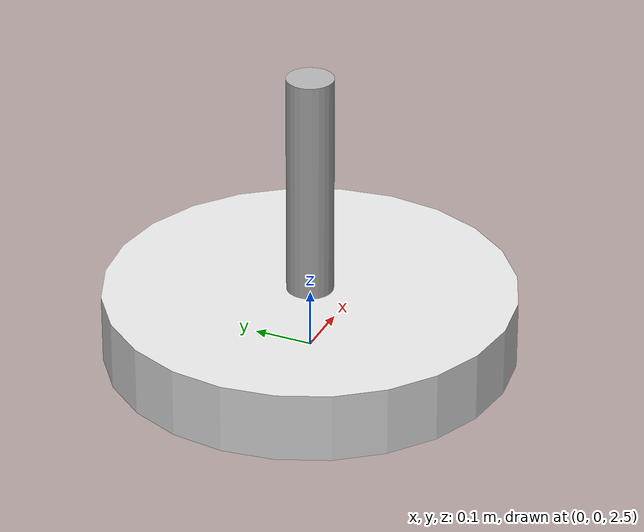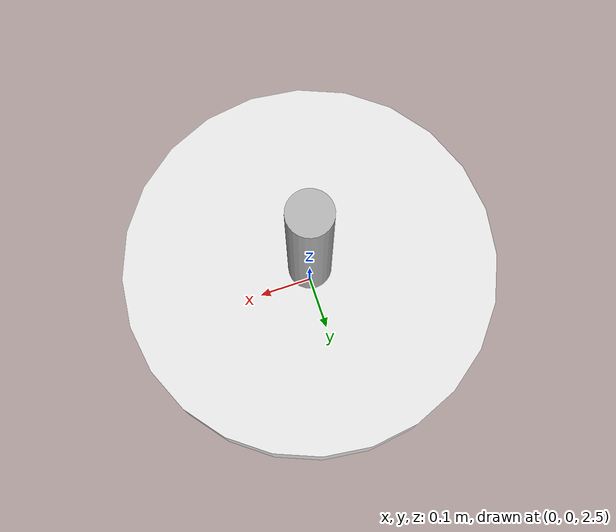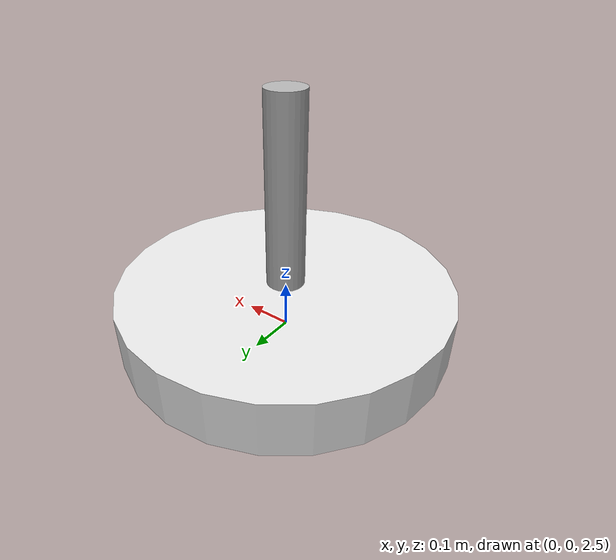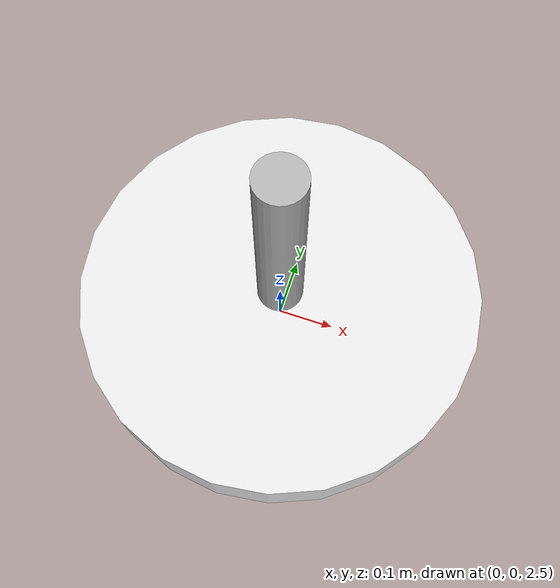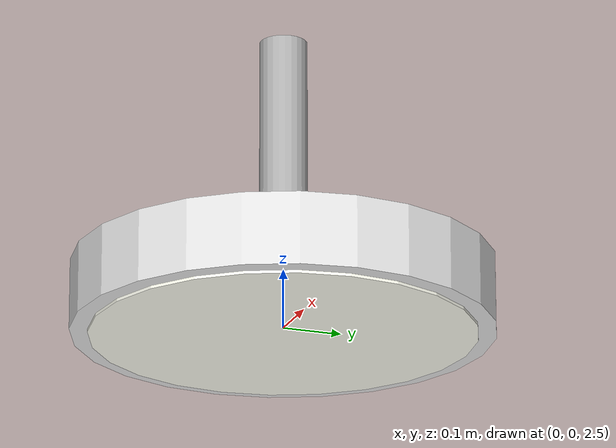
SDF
<?xml version="1.0"?>
<sdf version="1.6">
  <model name="surgical_light">
    <static>true</static>
    <!-- Ceiling mount arm -->
    <link name="arm">
      <pose>0 0 2.8 0 0 0</pose>
      <collision name="c"><geometry><cylinder><radius>0.04</radius><length>0.4</length></cylinder></geometry></collision>
      <visual name="v">
        <geometry><cylinder><radius>0.04</radius><length>0.4</length></cylinder></geometry>
        <material><ambient>0.7 0.7 0.7 1</ambient><diffuse>0.7 0.7 0.7 1</diffuse></material>
      </visual>
    </link>
    <!-- Main lamp head -->
    <link name="lamp_head">
      <pose>0 0 2.55 0 0 0</pose>
      <collision name="c"><geometry><cylinder><radius>0.35</radius><length>0.12</length></cylinder></geometry></collision>
      <visual name="v">
        <geometry><cylinder><radius>0.35</radius><length>0.12</length></cylinder></geometry>
        <material><ambient>0.9 0.9 0.9 1</ambient><diffuse>0.9 0.9 0.9 1</diffuse>
          <specular>0.8 0.8 0.8 1</specular></material>
      </visual>
    </link>
    <!-- Light emitting face -->
    <link name="light_face">
      <pose>0 0 2.49 0 0 0</pose>
      <visual name="v">
        <geometry><cylinder><radius>0.32</radius><length>0.01</length></cylinder></geometry>
        <material><ambient>1 1 0.95 1</ambient><diffuse>1 1 0.95 1</diffuse>
          <emissive>1 1 0.9 1</emissive></material>
      </visual>
    </link>
    <!-- Point light source -->
    <light name="surgical_spot" type="spot">
      <pose>0 0 2.5 0 1.5708 0</pose>
      <diffuse>1 1 0.95 1</diffuse>
      <specular>0.8 0.8 0.8 1</specular>
      <attenuation>
        <range>5</range>
        <constant>0.3</constant>
        <linear>0.1</linear>
        <quadratic>0.02</quadratic>
      </attenuation>
      <spot>
        <inner_angle>0.6</inner_angle>
        <outer_angle>1.0</outer_angle>
        <falloff>1</falloff>
      </spot>
      <cast_shadows>true</cast_shadows>
    </light>
  </model>
</sdf>
